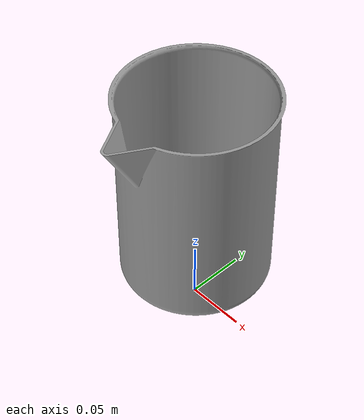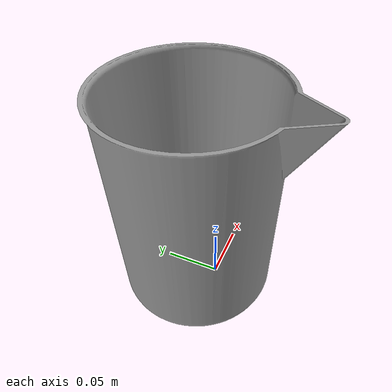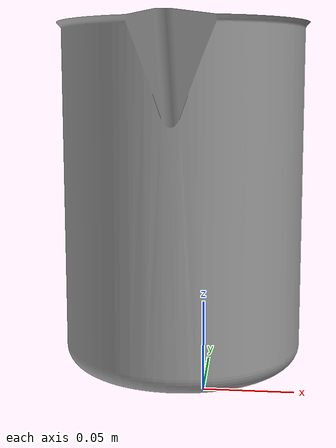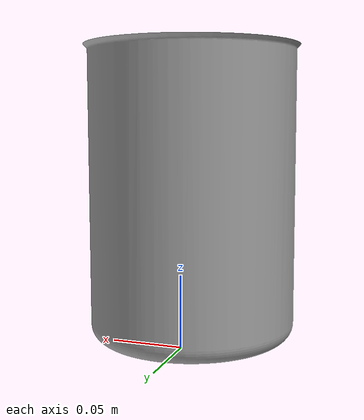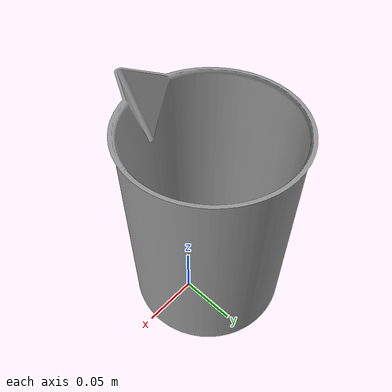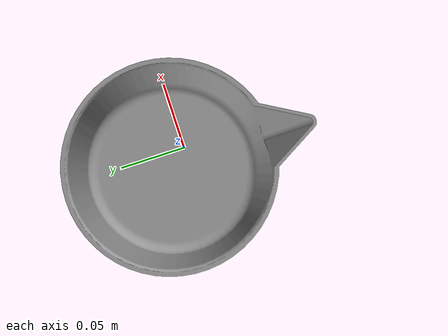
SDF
<?xml version='1.0'?>
<sdf version='1.7'>
  <model name='beaker_model'>
  <pose>-0.08 0.08 0.015 1.5708 0 0</pose> <!-- Rotated 90 degrees -->

    <!-- Beaker Definition -->
    <link name='link_2'>
      <inertial>
        <mass>1</mass>
        <inertia>
          <ixx>2113452.814813</ixx>
          <ixy>-0.408193</ixy>
          <ixz>-0.174324</ixz>
          <iyx>-0.408193</iyx>
          <iyy>663146.886889</iyy>
          <iyz>29099.165317</iyz>
          <izx>-0.174324</izx>
          <izy>29099.165317</izy>
          <izz>2099031.22</izz>
        </inertia>
      </inertial>
      <visual name='visual'>
        <geometry>
          <mesh>
            <uri>model://beaker_model/meshes/Beaker_2_Litres.STL</uri>
            <scale>0.001 0.001 0.001</scale> <!-- Converted to millimetres -->
          </mesh>
        </geometry>
        <material>
          <script>
            <uri>file://media/materials/scripts/gazebo.material</uri>
            <name>Gazebo/Grey</name>
          </script>
        </material>
        <transparency>0</transparency>
        <cast_shadows>1</cast_shadows>
      </visual>
      <collision name='collision'>
        <geometry>
          <mesh>
            <uri>model://beaker_model/meshes/Beaker_2_Litres.STL</uri>
            <scale>0.001 0.001 0.001</scale> <!-- Converted to millimetres -->
          </mesh>
        </geometry>
      </collision>
    </link>
    </model>
</sdf>
